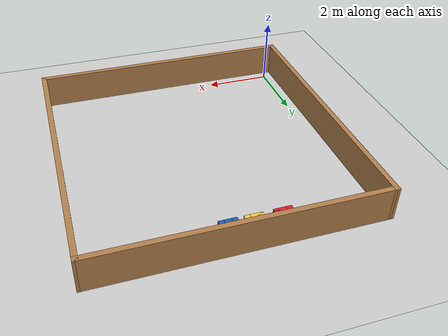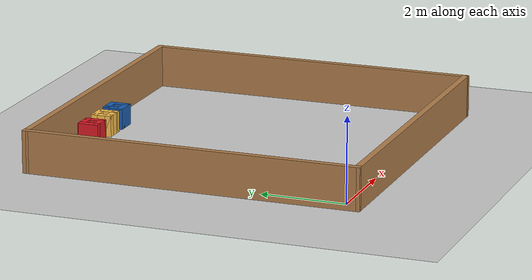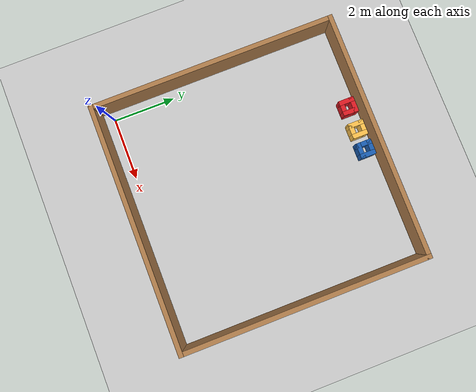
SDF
<sdf version="1.7">
 <world name="default">
  <light name="sun" type="directional">
   <pose>0 0 10 0 -0 0</pose>
   <diffuse>0.8 0.8 0.8 1</diffuse>
   <specular>0.2 0.2 0.2 1</specular>
   <attenuation>
    <range>1000</range>
    <constant>0.9</constant>
    <linear>0.01</linear>
    <quadratic>0.001</quadratic>
   </attenuation>
   <direction>-0.5 0.1 -0.9</direction>
   <spot><inner_angle>0</inner_angle><outer_angle>0</outer_angle><falloff>0</falloff></spot>
  </light>
  <model name="ground_plane">
   <static>1</static>
   <link name="link">
    <collision name="collision">
     <geometry><plane><normal>0 0 1</normal><size>100 100</size></plane></geometry>
     <surface>
      <contact><collide_bitmask>65535</collide_bitmask></contact>
      <friction><ode><mu>100</mu><mu2>50</mu2></ode></friction>
     </surface>
    </collision>
    <visual name="visual">
     <cast_shadows>0</cast_shadows>
     <geometry><plane><normal>0 0 1</normal><size>100 100</size></plane></geometry>
     <material>
      <script><uri>file://media/materials/scripts/gazebo.material</uri><name>Gazebo/Grey</name></script>
     </material>
    </visual>
   </link>
  </model>
  <gravity>0 0 -9.8</gravity>
  <magnetic_field>6e-06 2.3e-05 -4.2e-05</magnetic_field>
  <atmosphere type="adiabatic"/>
  <physics type="ode">
   <max_step_size>0.001</max_step_size>
   <real_time_factor>1</real_time_factor>
   <real_time_update_rate>1000</real_time_update_rate>
  </physics>
  <scene><ambient>0.4 0.4 0.4 1</ambient><background>0.7 0.7 0.7 1</background><shadows>1</shadows></scene>
  <audio><device>default</device></audio>
  <spherical_coordinates>
   <surface_model>EARTH_WGS84</surface_model>
   <latitude_deg>0</latitude_deg>
   <longitude_deg>0</longitude_deg>
   <elevation>0</elevation>
   <heading_deg>0</heading_deg>
  </spherical_coordinates>
  <model name="custom">
   <pose>3.56426 4.00549 0 0 -0 0</pose>
   <link name="Wall_1">
    <collision name="Wall_1_Collision">
     <geometry><box><size>8 0.15 1</size></box></geometry>
     <pose>0 0 0.5 0 -0 0</pose>
    </collision>
    <visual name="Wall_1_Visual">
     <pose>0 0 0.5 0 -0 0</pose>
     <geometry><box><size>8 0.15 1</size></box></geometry>
     <material>
      <script><uri>file://media/materials/scripts/gazebo.material</uri><name>Gazebo/Wood</name></script>
      <ambient>1 1 1 1</ambient>
     </material>
     <meta><layer>0</layer></meta>
    </visual>
    <pose>-0 3.46654 0 0 -0 -0.001019</pose>
   </link>
   <link name="Wall_10">
    <collision name="Wall_10_Collision">
     <geometry><box><size>0.5 0.15 0.5</size></box></geometry>
     <pose>0 0 0.25 0 -0 0</pose>
    </collision>
    <visual name="Wall_10_Visual">
     <pose>0 0 0.25 0 -0 0</pose>
     <geometry><box><size>0.5 0.15 0.5</size></box></geometry>
     <material>
      <script><uri>file://media/materials/scripts/gazebo.material</uri><name>Gazebo/Grey</name></script>
      <ambient>0.878431 0.105882 0.141176 1</ambient>
     </material>
     <meta><layer>0</layer></meta>
    </visual>
    <pose>-1.038 3.06554 0 0 -0 1.5708</pose>
   </link>
   <link name="Wall_11">
    <collision name="Wall_11_Collision">
     <geometry><box><size>0.5 0.15 0.5</size></box></geometry>
     <pose>0 0 0.25 0 -0 0</pose>
    </collision>
    <visual name="Wall_11_Visual">
     <pose>0 0 0.25 0 -0 0</pose>
     <geometry><box><size>0.5 0.15 0.5</size></box></geometry>
     <material>
      <script><uri>file://media/materials/scripts/gazebo.material</uri><name>Gazebo/Grey</name></script>
      <ambient>0.878431 0.105882 0.141176 1</ambient>
     </material>
     <meta><layer>0</layer></meta>
    </visual>
    <pose>-1.213 3.24054 0 0 -0 3.14159</pose>
   </link>
   <link name="Wall_15">
    <collision name="Wall_15_Collision">
     <geometry><box><size>0.5 0.15 0.5</size></box></geometry>
     <pose>0 0 0.25 0 -0 0</pose>
    </collision>
    <visual name="Wall_15_Visual">
     <pose>0 0 0.25 0 -0 0</pose>
     <geometry><box><size>0.5 0.15 0.5</size></box></geometry>
     <material>
      <script><uri>file://media/materials/scripts/gazebo.material</uri><name>Gazebo/Grey</name></script>
      <ambient>1 0.764706 0.305882 1</ambient>
     </material>
     <meta><layer>0</layer></meta>
    </visual>
    <pose>-0.614 3.06554 0 0 -0 -1.5708</pose>
   </link>
   <link name="Wall_16">
    <collision name="Wall_16_Collision">
     <geometry><box><size>0.5 0.15 0.5</size></box></geometry>
     <pose>0 0 0.25 0 -0 0</pose>
    </collision>
    <visual name="Wall_16_Visual">
     <pose>0 0 0.25 0 -0 0</pose>
     <geometry><box><size>0.5 0.15 0.5</size></box></geometry>
     <material>
      <script><uri>file://media/materials/scripts/gazebo.material</uri><name>Gazebo/Grey</name></script>
      <ambient>1 0.764706 0.305882 1</ambient>
     </material>
     <meta><layer>0</layer></meta>
    </visual>
    <pose>-0.439 2.89054 0 0 -0 0</pose>
   </link>
   <link name="Wall_17">
    <collision name="Wall_17_Collision">
     <geometry><box><size>0.5 0.15 0.5</size></box></geometry>
     <pose>0 0 0.25 0 -0 0</pose>
    </collision>
    <visual name="Wall_17_Visual">
     <pose>0 0 0.25 0 -0 0</pose>
     <geometry><box><size>0.5 0.15 0.5</size></box></geometry>
     <material>
      <script><uri>file://media/materials/scripts/gazebo.material</uri><name>Gazebo/Grey</name></script>
      <ambient>1 0.764706 0.305882 1</ambient>
     </material>
     <meta><layer>0</layer></meta>
    </visual>
    <pose>-0.264 3.06554 0 0 -0 1.5708</pose>
   </link>
   <link name="Wall_18">
    <collision name="Wall_18_Collision">
     <geometry><box><size>0.5 0.15 0.5</size></box></geometry>
     <pose>0 0 0.25 0 -0 0</pose>
    </collision>
    <visual name="Wall_18_Visual">
     <pose>0 0 0.25 0 -0 0</pose>
     <geometry><box><size>0.5 0.15 0.5</size></box></geometry>
     <material>
      <script><uri>file://media/materials/scripts/gazebo.material</uri><name>Gazebo/Grey</name></script>
      <ambient>1 0.764706 0.305882 1</ambient>
     </material>
     <meta><layer>0</layer></meta>
    </visual>
    <pose>-0.439 3.24054 0 0 -0 3.14159</pose>
   </link>
   <link name="Wall_3">
    <collision name="Wall_3_Collision">
     <geometry><box><size>8 0.15 1</size></box></geometry>
     <pose>0 0 0.5 0 -0 0</pose>
    </collision>
    <visual name="Wall_3_Visual">
     <pose>0 0 0.5 0 -0 0</pose>
     <geometry><box><size>8 0.15 1</size></box></geometry>
     <material>
      <script><uri>file://media/materials/scripts/gazebo.material</uri><name>Gazebo/Wood</name></script>
      <ambient>1 1 1 1</ambient>
     </material>
     <meta><layer>0</layer></meta>
    </visual>
    <pose>3.925 -0.462462 0 0 -0 -1.5708</pose>
   </link>
   <link name="Wall_30">
    <collision name="Wall_30_Collision">
     <geometry><box><size>0.5 0.15 0.5</size></box></geometry>
     <pose>0 0 0.25 0 -0 0</pose>
    </collision>
    <visual name="Wall_30_Visual">
     <pose>0 0 0.25 0 -0 0</pose>
     <geometry><box><size>0.5 0.15 0.5</size></box></geometry>
     <material>
      <script><uri>file://media/materials/scripts/gazebo.material</uri><name>Gazebo/Grey</name></script>
      <ambient>0.101961 0.372549 0.705882 1</ambient>
     </material>
     <meta><layer>0</layer></meta>
    </visual>
    <pose>0.055 3.06254 0 0 -0 -1.5708</pose>
   </link>
   <link name="Wall_31">
    <collision name="Wall_31_Collision">
     <geometry><box><size>0.5 0.15 0.5</size></box></geometry>
     <pose>0 0 0.25 0 -0 0</pose>
    </collision>
    <visual name="Wall_31_Visual">
     <pose>0 0 0.25 0 -0 0</pose>
     <geometry><box><size>0.5 0.15 0.5</size></box></geometry>
     <material>
      <script><uri>file://media/materials/scripts/gazebo.material</uri><name>Gazebo/Grey</name></script>
      <ambient>0.101961 0.372549 0.705882 1</ambient>
     </material>
     <meta><layer>0</layer></meta>
    </visual>
    <pose>0.23 2.88754 0 0 -0 0</pose>
   </link>
   <link name="Wall_32">
    <collision name="Wall_32_Collision">
     <geometry><box><size>0.5 0.15 0.5</size></box></geometry>
     <pose>0 0 0.25 0 -0 0</pose>
    </collision>
    <visual name="Wall_32_Visual">
     <pose>0 0 0.25 0 -0 0</pose>
     <geometry><box><size>0.5 0.15 0.5</size></box></geometry>
     <material>
      <script><uri>file://media/materials/scripts/gazebo.material</uri><name>Gazebo/Grey</name></script>
      <ambient>0.101961 0.372549 0.705882 1</ambient>
     </material>
     <meta><layer>0</layer></meta>
    </visual>
    <pose>0.405 3.06254 0 0 -0 1.5708</pose>
   </link>
   <link name="Wall_33">
    <collision name="Wall_33_Collision">
     <geometry><box><size>0.5 0.15 0.5</size></box></geometry>
     <pose>0 0 0.25 0 -0 0</pose>
    </collision>
    <visual name="Wall_33_Visual">
     <pose>0 0 0.25 0 -0 0</pose>
     <geometry><box><size>0.5 0.15 0.5</size></box></geometry>
     <material>
      <script><uri>file://media/materials/scripts/gazebo.material</uri><name>Gazebo/Grey</name></script>
      <ambient>0.101961 0.372549 0.705882 1</ambient>
     </material>
     <meta><layer>0</layer></meta>
    </visual>
    <pose>0.23 3.23754 0 0 -0 3.14159</pose>
   </link>
   <link name="Wall_4">
    <collision name="Wall_4_Collision">
     <geometry><box><size>8 0.15 1</size></box></geometry>
     <pose>0 0 0.5 0 -0 0</pose>
    </collision>
    <visual name="Wall_4_Visual">
     <pose>0 0 0.5 0 -0 0</pose>
     <geometry><box><size>8 0.15 1</size></box></geometry>
     <material>
      <script><uri>file://media/materials/scripts/gazebo.material</uri><name>Gazebo/Wood</name></script>
      <ambient>1 1 1 1</ambient>
     </material>
     <meta><layer>0</layer></meta>
    </visual>
    <pose>-0 -4.38346 0 0 -0 3.14057</pose>
   </link>
   <link name="Wall_5">
    <collision name="Wall_5_Collision">
     <geometry><box><size>8 0.15 1</size></box></geometry>
     <pose>0 0 0.5 0 -0 0</pose>
    </collision>
    <visual name="Wall_5_Visual">
     <pose>0 0 0.5 0 -0 0</pose>
     <geometry><box><size>8 0.15 1</size></box></geometry>
     <material>
      <script><uri>file://media/materials/scripts/gazebo.material</uri><name>Gazebo/Wood</name></script>
      <ambient>1 1 1 1</ambient>
     </material>
     <meta><layer>0</layer></meta>
    </visual>
    <pose>-3.925 -0.454462 0 0 -0 1.5708</pose>
   </link>
   <link name="Wall_8">
    <collision name="Wall_8_Collision">
     <geometry><box><size>0.5 0.15 0.5</size></box></geometry>
     <pose>0 0 0.25 0 -0 0</pose>
    </collision>
    <visual name="Wall_8_Visual">
     <pose>0 0 0.25 0 -0 0</pose>
     <geometry><box><size>0.5 0.15 0.5</size></box></geometry>
     <material>
      <script><uri>file://media/materials/scripts/gazebo.material</uri><name>Gazebo/Grey</name></script>
      <ambient>0.878431 0.105882 0.141176 1</ambient>
     </material>
     <meta><layer>0</layer></meta>
    </visual>
    <pose>-1.388 3.06554 0 0 -0 -1.5708</pose>
   </link>
   <link name="Wall_9">
    <collision name="Wall_9_Collision">
     <geometry><box><size>0.5 0.15 0.5</size></box></geometry>
     <pose>0 0 0.25 0 -0 0</pose>
    </collision>
    <visual name="Wall_9_Visual">
     <pose>0 0 0.25 0 -0 0</pose>
     <geometry><box><size>0.5 0.15 0.5</size></box></geometry>
     <material>
      <script><uri>file://media/materials/scripts/gazebo.material</uri><name>Gazebo/Grey</name></script>
      <ambient>0.878431 0.105882 0.141176 1</ambient>
     </material>
     <meta><layer>0</layer></meta>
    </visual>
    <pose>-1.213 2.89054 0 0 -0 0</pose>
   </link>
   <static>1</static>
  </model>
 </world>
</sdf>
